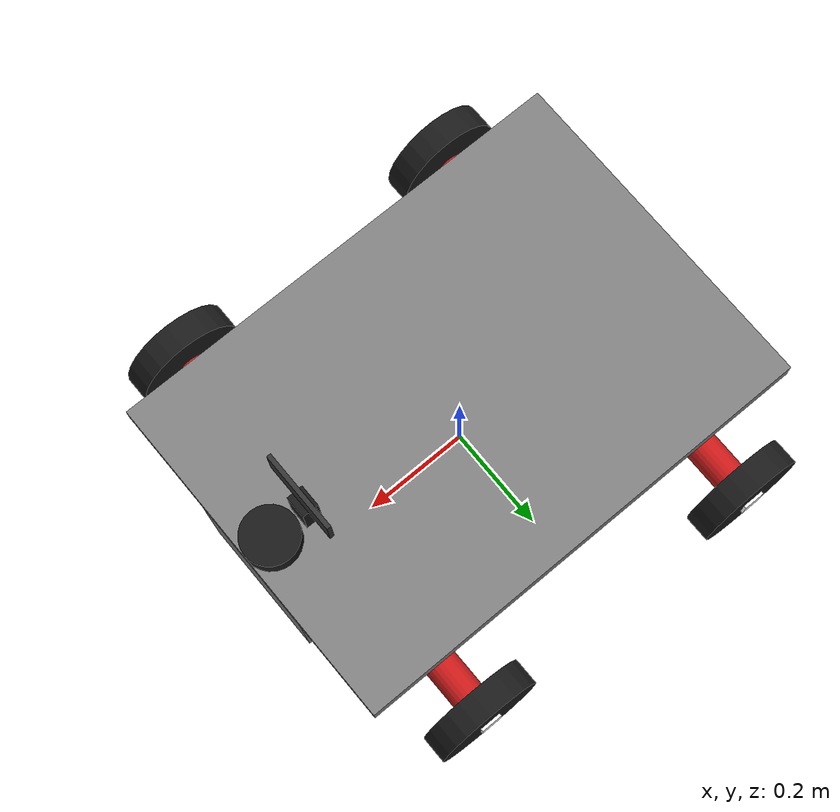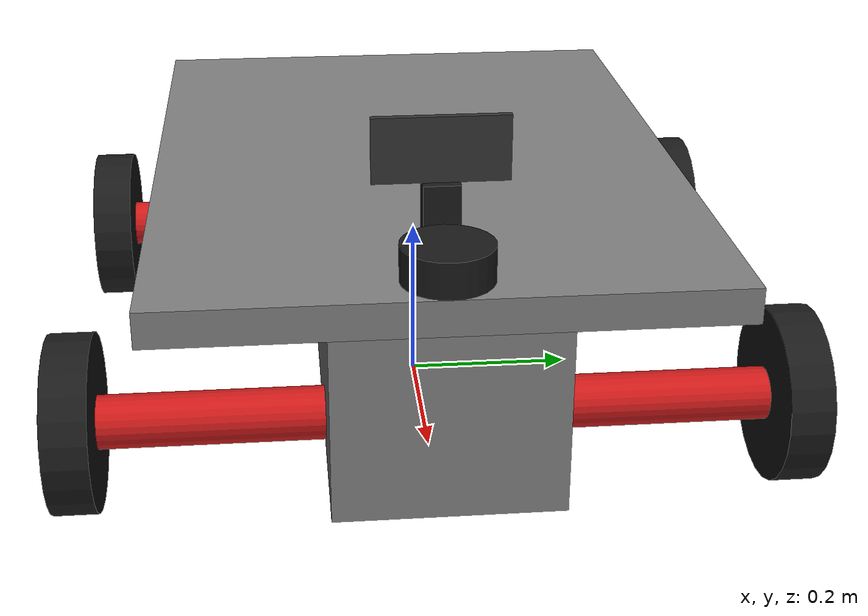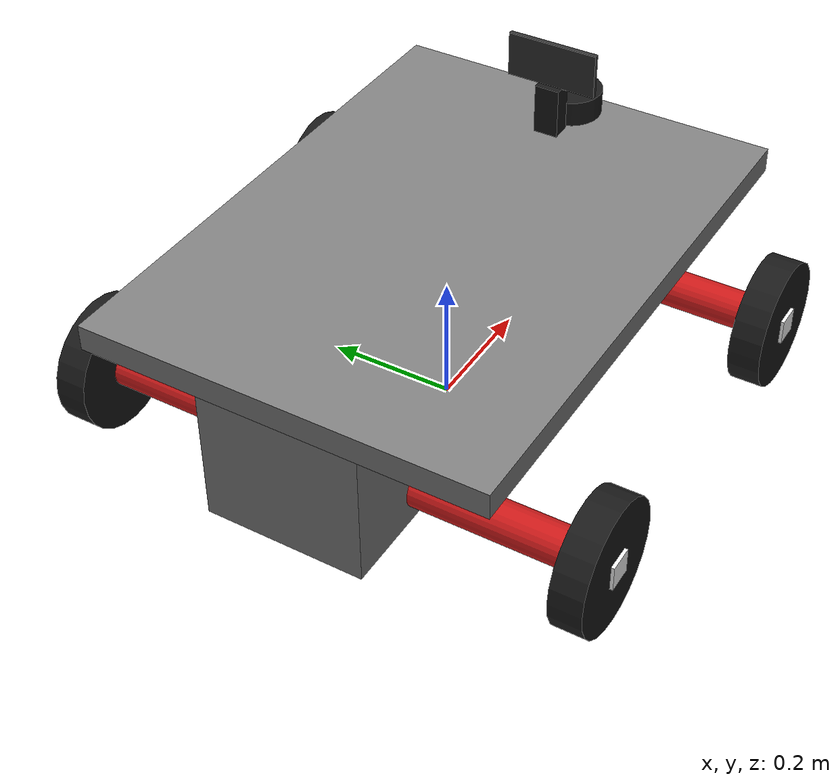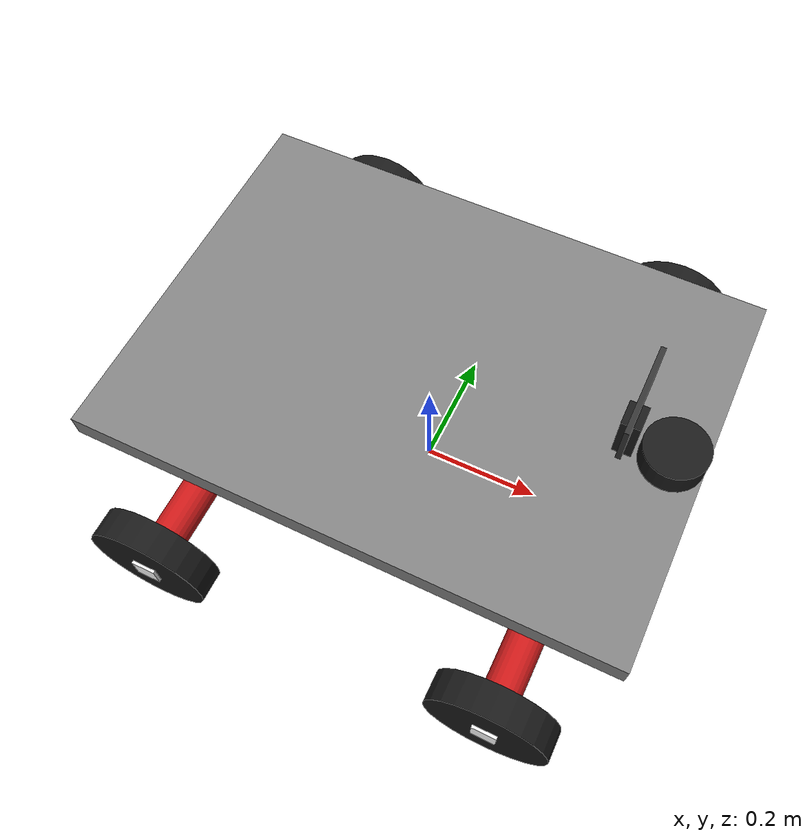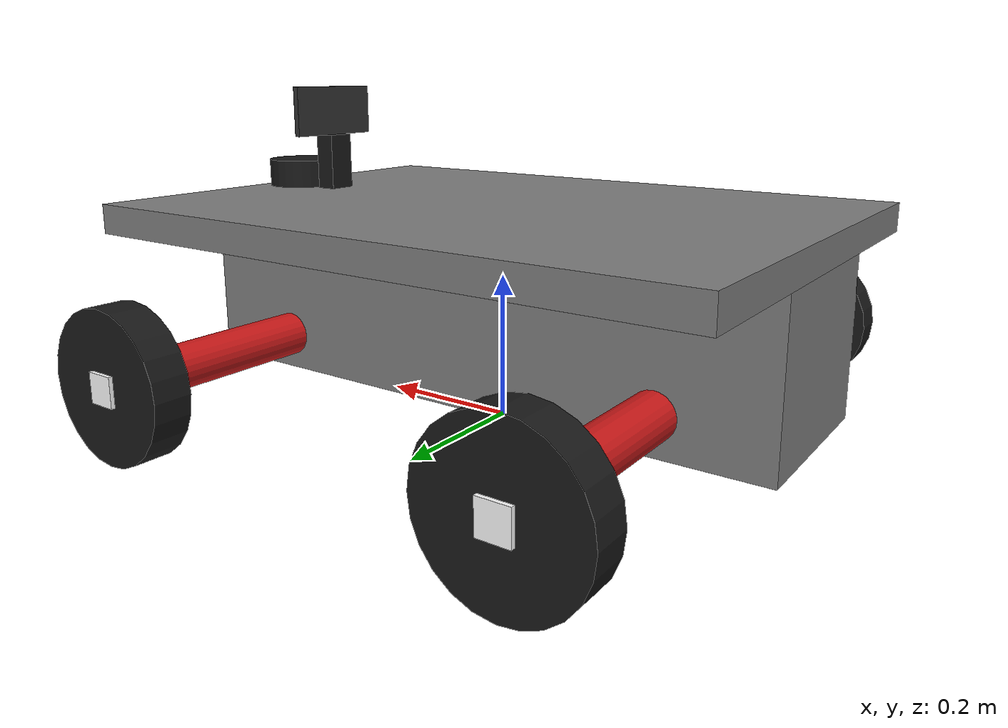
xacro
<?xml version="1.0"?>
<robot xmlns:xacro="http://www.ros.org/wiki/xacro" name="ntou_robot">

  <!-- Total Dimensions -->
  <xacro:property name="wheelbase" value="0.58"/> <!-- 58 cm center-to-center -->
  <xacro:property name="total_width" value="0.63"/> <!-- 63 cm top width -->
  <xacro:property name="chassis_length" value="0.87"/> <!-- 87 cm total length -->
  <xacro:property name="ground_clearance" value="0.05"/> <!-- 5 cm -->

  <!-- Wheel Dimensions -->
  <xacro:property name="wheel_radius" value="0.10"/> <!-- 20 cm diameter -->
  <xacro:property name="wheel_dia" value="${2 * wheel_radius}"/>
  <xacro:property name="wheel_width" value="0.05"/> <!-- Standard 10cm width -->
  <xacro:property name="track_width" value="0.80"/> <!-- 80 cm left-to-right center -->

  <!-- Stepped Chassis Dimensions -->
  <xacro:property name="lower_chassis_width" value="0.25"/>
  <xacro:property name="lower_chassis_height" value="0.21"/> <!-- 21 cm -->
  <xacro:property name="upper_chassis_width" value="${total_width}"/>
  <xacro:property name="upper_chassis_height" value="0.04"/> <!-- 4 cm -->
  <xacro:property name="total_height" value="${lower_chassis_height + upper_chassis_height}"/>

  <material name="grey"><color rgba="0.5 0.5 0.5 1.0"/></material>
  <material name="black"><color rgba="0.1 0.1 0.1 1.0"/></material>
  <material name="red"><color rgba="0.8 0.1 0.1 1.0"/></material>

  <!-- Inertia Macros -->
  <xacro:macro name="box_inertia" params="m w h d">
    <inertial>
      <mass value="${m}"/>
      <inertia ixx="${(m/12) * (h*h + d*d)}" ixy="0.0" ixz="0.0"
               iyy="${(m/12) * (w*w + d*d)}" iyz="0.0"
               izz="${(m/12) * (w*w + h*h)}"/>
    </inertial>
  </xacro:macro>

  <xacro:macro name="cylinder_inertia" params="m r l">
    <inertial>
      <mass value="${m}"/>
      <inertia ixx="${(m/12) * (3*r*r + l*l)}" ixy="0.0" ixz="0.0"
               iyy="${(m/12) * (3*r*r + l*l)}" iyz="0.0"
               izz="${(m/2) * (r*r)}"/>
    </inertial>
  </xacro:macro>

  <link name="base_footprint"/>
  <!-- base_link is anchored at the bottom face of the chassis -->
  <joint name="base_footprint_joint" type="fixed">
    <parent link="base_footprint"/>
    <child link="base_link"/>
    <origin xyz="0 0 ${ground_clearance}" rpy="0 0 0"/>
  </joint>

  <!-- Base Link (Center of chassis) -->
  <link name="base_link">
    <!-- Lower Narrow Body -->
    <visual>
      <origin xyz="0 0 ${lower_chassis_height / 2}" rpy="0 0 0"/>
      <geometry>
        <box size="${chassis_length} ${lower_chassis_width} ${lower_chassis_height}"/>
      </geometry>
      <material name="grey"/>
    </visual>

    <!-- Upper Overhang Body (T-top covering the wheels) -->
    <visual>
      <origin xyz="0 0 ${lower_chassis_height + (upper_chassis_height / 2)}" rpy="0 0 0"/>
      <geometry>
        <box size="${chassis_length} ${upper_chassis_width} ${upper_chassis_height}"/>
      </geometry>
      <material name="grey"/>
    </visual>

    <!-- Collisions for the two cuboids -->
    <collision>
      <origin xyz="0 0 ${lower_chassis_height / 2}" rpy="0 0 0"/>
      <geometry>
        <box size="${chassis_length} ${lower_chassis_width} ${lower_chassis_height}"/>
      </geometry>
    </collision>
    <collision>
      <origin xyz="0 0 ${lower_chassis_height + (upper_chassis_height / 2)}" rpy="0 0 0"/>
      <geometry>
        <box size="${chassis_length} ${upper_chassis_width} ${upper_chassis_height}"/>
      </geometry>
    </collision>

    <!-- Chassis Mass: ~25kg -->
    <xacro:box_inertia m="25.0" w="${upper_chassis_width}" h="${total_height}" d="${chassis_length}"/>
  </link>

  <!-- Arm Macro -->
  <xacro:macro name="suspension_arm" params="prefix x_pos y_pos">
    <link name="${prefix}_arm">
      <visual>
        <geometry>
          <cylinder radius="0.03" length="${(track_width - lower_chassis_width) / 2}"/>
        </geometry>
        <!-- Shift cylinder outward so its inner end touches lower_chassis -->
        <origin rpy="1.5708 0 0" xyz="0 ${((track_width - lower_chassis_width) / 4) if y_pos > 0 else -((track_width - lower_chassis_width) / 4)} 0"/>
        <material name="red"/>
      </visual>
      <collision>
        <geometry>
          <cylinder radius="0.03" length="${(track_width - lower_chassis_width) / 2}"/>
        </geometry>
        <origin rpy="1.5708 0 0" xyz="0 ${((track_width - lower_chassis_width) / 4) if y_pos > 0 else -((track_width - lower_chassis_width) / 4)} 0"/>
      </collision>
      <xacro:cylinder_inertia m="1.5" r="0.03" l="${(track_width - lower_chassis_width) / 2}"/>
    </link>

    <joint name="${prefix}_arm_joint" type="fixed">
      <parent link="base_link"/>
      <child link="${prefix}_arm"/>
      <!-- Anchor at the lower chassis wall and at the wheel axle height -->
      <origin xyz="${x_pos} ${(lower_chassis_width / 2) if y_pos > 0 else -(lower_chassis_width / 2)} ${wheel_radius - ground_clearance}" rpy="0 0 0"/>
    </joint>
  </xacro:macro>

  <!-- Wheel Macro -->
  <xacro:macro name="wheel" params="prefix y_reflect">
    <link name="${prefix}_wheel">
      <visual>
        <geometry><cylinder radius="${wheel_radius}" length="${wheel_width}"/></geometry>
        <origin rpy="1.5708 0 0" xyz="0 0 0"/>
        <material name="black"/>
      </visual>
      <visual>
        <origin xyz="0 ${y_reflect * (wheel_width / 2 + 0.0025)} 0" rpy="0 0 0"/>
        <geometry>
          <box size="0.04 0.005 0.04"/>
        </geometry>
        <material name="white">
          <color rgba="1.0 1.0 1.0 1.0"/>
        </material>
      </visual>
      <collision>
        <geometry>
          <cylinder radius="${wheel_radius}" length="${wheel_width}"/>
        </geometry>
        <origin rpy="1.5708 0 0" xyz="0 0 0"/>
      </collision>
      <!-- Wheel mass: ~3kg -->
      <xacro:cylinder_inertia m="3.0" r="${wheel_radius}" l="${wheel_width}"/>
    </link>
    <gazebo reference="${prefix}_wheel">
      <mu1>1.0</mu1>
      <mu2>1.0</mu2>
      <minDepth>0.001</minDepth>
      <kp>1e7</kp>
      <kd>1e2</kd>
      <maxContacts>1</maxContacts>
    </gazebo>
  </xacro:macro>

  <!-- Rear Wheels (Fixed arms, rotating wheels) -->
  <xacro:suspension_arm prefix="rear_left" x_pos="-${wheelbase/2}" y_pos="${track_width/2}"/>
  <xacro:suspension_arm prefix="rear_right" x_pos="-${wheelbase/2}" y_pos="-${track_width/2}"/>

  <xacro:wheel prefix="rear_left" y_reflect="1"/>
  <xacro:wheel prefix="rear_right" y_reflect="-1"/>

  <joint name="rear_left_wheel_joint" type="continuous">
    <parent link="rear_left_arm"/>
    <child link="rear_left_wheel"/>
    <origin xyz="0 ${(track_width - lower_chassis_width) / 2} 0" rpy="0 0 0"/>
    <axis xyz="0 1 0"/>
  </joint>

  <joint name="rear_right_wheel_joint" type="continuous">
    <parent link="rear_right_arm"/>
    <child link="rear_right_wheel"/>
    <origin xyz="0 -${(track_width - lower_chassis_width) / 2} 0" rpy="0 0 0"/>
    <axis xyz="0 1 0"/>
  </joint>

  <!-- Front Steered Wheels (Arms -> Steering Knuckle -> Wheel) -->
  <xacro:suspension_arm prefix="front_left" x_pos="${wheelbase/2}" y_pos="${track_width/2}"/>
  <xacro:suspension_arm prefix="front_right" x_pos="${wheelbase/2}" y_pos="-${track_width/2}"/>

  <link name="front_left_steering_knuckle">
    <xacro:box_inertia m="0.5" w="0.05" h="0.05" d="0.05"/>
  </link>
  <link name="front_right_steering_knuckle">
    <xacro:box_inertia m="0.5" w="0.05" h="0.05" d="0.05"/>
  </link>

  <joint name="front_left_steering_joint" type="revolute">
    <parent link="front_left_arm"/>
    <child link="front_left_steering_knuckle"/>
    <origin xyz="0 ${(track_width - lower_chassis_width) / 2} 0" rpy="0 0 0"/>
    <axis xyz="0 0 1"/>
    <limit lower="-0.65" upper="0.65" effort="100" velocity="1.0"/>
  </joint>

  <joint name="front_right_steering_joint" type="revolute">
    <parent link="front_right_arm"/>
    <child link="front_right_steering_knuckle"/>
    <origin xyz="0 -${(track_width - lower_chassis_width) / 2} 0" rpy="0 0 0"/>
    <axis xyz="0 0 1"/>
    <limit lower="-0.65" upper="0.65" effort="100" velocity="1.0"/>
  </joint>

  <xacro:wheel prefix="front_left" y_reflect="1"/>
  <xacro:wheel prefix="front_right" y_reflect="-1"/>

  <joint name="front_left_wheel_joint" type="continuous">
    <parent link="front_left_steering_knuckle"/>
    <child link="front_left_wheel"/>
    <origin xyz="0 0 0" rpy="0 0 0"/>
    <axis xyz="0 1 0"/>
  </joint>

  <joint name="front_right_wheel_joint" type="continuous">
    <parent link="front_right_steering_knuckle"/>
    <child link="front_right_wheel"/>
    <origin xyz="0 0 0" rpy="0 0 0"/>
    <axis xyz="0 1 0"/>
  </joint>

  <xacro:include filename="ros2_control.xacro"/>
  <xacro:include filename="lidar.xacro" />
  <xacro:include filename="mobile_phone.xacro" />

</robot>

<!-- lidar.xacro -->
<robot xmlns:xacro="http://www.ros.org/wiki/xacro">

  <!-- LiDAR Joint: 5 cm behind front edge, centered laterally, on top of chassis -->
  <joint name="lidar_joint" type="fixed">
    <parent link="base_link"/>
    <child link="lidar_link"/>
    <origin xyz="${(chassis_length / 2) - 0.05} 0.0 ${total_height + 0.02}" rpy="0 0 0"/>
  </joint>

  <!-- LiDAR Sensor Link -->
  <link name="lidar_link">
    <visual>
      <origin xyz="0 0 0" rpy="0 0 0"/>
      <geometry>
        <cylinder radius="0.05" length="0.04"/>
      </geometry>
      <material name="lidar_black">
        <color rgba="0.1 0.1 0.1 1.0"/>
      </material>
    </visual>
    <collision>
      <origin xyz="0 0 0" rpy="0 0 0"/>
      <geometry>
        <cylinder radius="0.05" length="0.04"/>
      </geometry>
    </collision>
    <inertial>
      <mass value="0.15"/>
      <origin xyz="0 0 0" rpy="0 0 0"/>
      <inertia ixx="0.0001" ixy="0.0" ixz="0.0" iyy="0.0001" iyz="0.0" izz="0.0001"/>
    </inertial>
  </link>

  <!-- Gazebo Harmonic Sensor Configuration -->
  <gazebo reference="lidar_link">
    <sensor name="gpu_lidar" type="gpu_lidar">
      <pose relative_to="lidar_link">0 0 0 0 0 0</pose>
      <topic>/scan</topic>
      <update_rate>15</update_rate>
      <always_on>true</always_on>
      <visualize>true</visualize>
      <gz_frame_id>lidar_link</gz_frame_id>
      <ray>
        <scan>
          <horizontal>
            <samples>360</samples>
            <resolution>1</resolution>
            <min_angle>-3.14159</min_angle>
            <max_angle>3.14159</max_angle>
          </horizontal>
        </scan>
        <range>
          <min>0.15</min>
          <max>20.0</max>
          <resolution>0.01</resolution>
        </range>
      </ray>
    </sensor>
  </gazebo>

</robot>

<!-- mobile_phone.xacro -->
<robot xmlns:xacro="http://www.ros.org/wiki/xacro">

  <!-- Stand Properties -->
  <xacro:property name="stand_length" value="0.03"/>
  <xacro:property name="stand_width" value="0.04"/>
  <xacro:property name="stand_height" value="0.08"/>

  <!-- Samsung S23 Properties (Landscape: Width=146mm, Height=71mm, Depth=8mm) -->
  <xacro:property name="phone_depth" value="0.008"/>
  <xacro:property name="phone_width" value="0.146"/>
  <xacro:property name="phone_height" value="0.071"/>

  <!-- Stand Joint (Mounted 10cm behind the front edge) -->
  <joint name="phone_stand_joint" type="fixed">
    <parent link="base_link"/>
    <child link="phone_stand_link"/>
    <origin xyz="${(chassis_length / 2) - 0.120} 0.0 ${total_height + (stand_height / 2)}" rpy="0 0 0"/>
  </joint>

  <link name="phone_stand_link">
    <visual>
      <geometry><box size="${stand_length} ${stand_width} ${stand_height}"/></geometry>
      <material name="black"><color rgba="0.1 0.1 0.1 1.0"/></material>
    </visual>
    <inertial>
      <mass value="0.05"/>
      <inertia ixx="0.0001" ixy="0" ixz="0" iyy="0.0001" iyz="0" izz="0.0001"/>
    </inertial>
  </link>

  <!-- Phone Joint (Mounted on top of the stand, facing forward) -->
  <joint name="phone_joint" type="fixed">
    <parent link="phone_stand_link"/>
    <child link="phone_link"/>
    <origin xyz="0 0 ${(stand_height / 2) + (phone_height / 2)}" rpy="0 0 0"/>
  </joint>

  <link name="phone_link">
    <visual>
      <geometry><box size="${phone_depth} ${phone_width} ${phone_height}"/></geometry>
      <material name="dark_grey"><color rgba="0.2 0.2 0.2 1.0"/></material>
    </visual>
    <inertial>
      <mass value="0.168"/> <!-- S23 weight -->
      <inertia ixx="0.0001" ixy="0" ixz="0" iyy="0.0001" iyz="0" izz="0.0001"/>
    </inertial>
  </link>

  <!-- Gazebo IMU Sensor -->
  <gazebo reference="phone_link">
    <sensor name="imu_sensor" type="imu">
      <always_on>1</always_on>
      <update_rate>100</update_rate>
      <visualize>true</visualize>
      <topic>/imu</topic>
      <gz_frame_id>phone_link</gz_frame_id>

      <!-- MANDATORY BLOCK: Tells Gazebo to generate physics data -->
      <imu>
        <angular_velocity>
          <x><noise type="none"/></x>
          <y><noise type="none"/></y>
          <z><noise type="none"/></z>
        </angular_velocity>
        <linear_acceleration>
          <x><noise type="none"/></x>
          <y><noise type="none"/></y>
          <z><noise type="none"/></z>
        </linear_acceleration>
      </imu>
    </sensor>
  </gazebo>
</robot>
